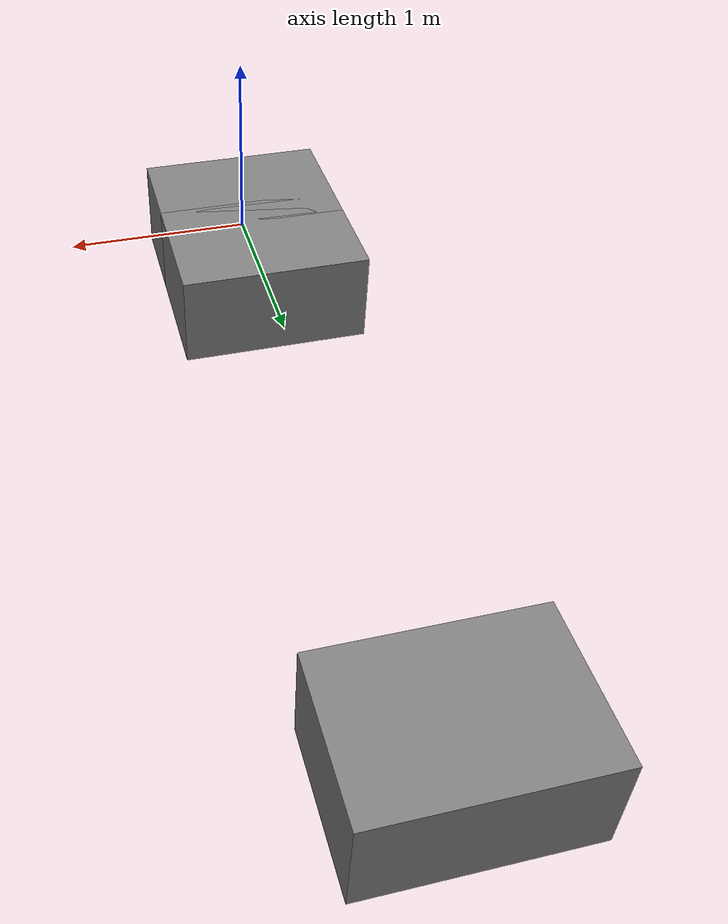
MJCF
<mujoco model="MuJoCo Model">
  <compiler angle="radian"/>

  <option timestep="0.01" impratio="100" cone="elliptic"/>

  <default>
    <geom friction="1 0.5 0.001"/>
  </default>

  <worldbody>
    <body name="body_0" pos="0 0.5 0">
      <inertial pos="0 0 0" quat="0 0.707107 0 0.707107" mass="350" diaginertia="43.4583 36.4583 21.5833"/>
      <geom name="box_0" size="0.5 0.35 0.25" type="box" contype="2" conaffinity="2147483645" friction="0.75 0.375 0.00075"/>
    </body>
    <body name="body_1">
      <inertial pos="0 0 0" quat="0 0.707107 0 0.707107" mass="350" diaginertia="43.4583 36.4583 21.5833"/>
      <joint name="joint_2" type="free"/>
      <geom name="box_1" size="0.5 0.35 0.25" type="box" contype="4" conaffinity="2147483643" friction="0.75 0.375 0.00075"/>
    </body>
    <body name="body_0_2" pos="0 3.5 0">
      <inertial pos="0 0 0" quat="0 0.707107 0 0.707107" mass="350" diaginertia="43.4583 36.4583 21.5833"/>
      <geom name="box_2" size="0.5 0.35 0.25" type="box" contype="8" conaffinity="2147483639" friction="0.75 0.375 0.00075"/>
    </body>
    <body name="body_1_2">
      <inertial pos="0 0 0" quat="0 0.707107 0 0.707107" mass="350" diaginertia="43.4583 36.4583 21.5833"/>
      <joint name="joint_2_2" type="free"/>
      <geom name="box_3" size="0.5 0.35 0.25" type="box" contype="16" conaffinity="2147483631" friction="0.75 0.375 0.00075"/>
    </body>
  </worldbody>
</mujoco>
